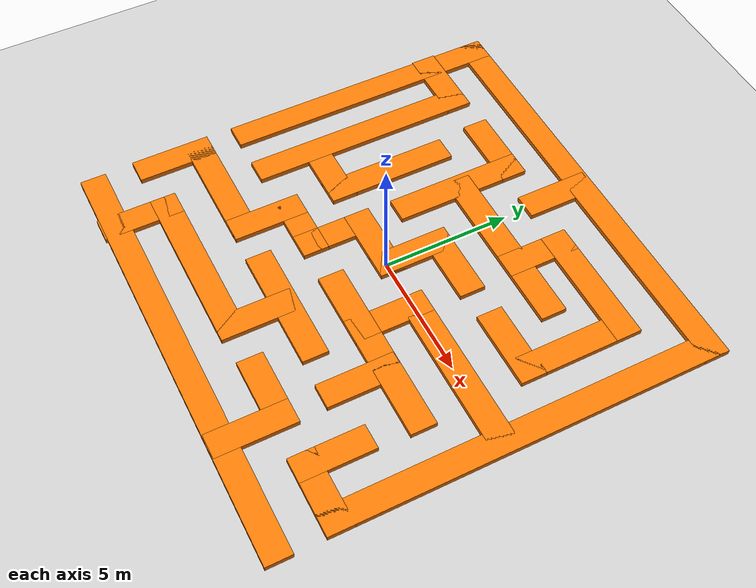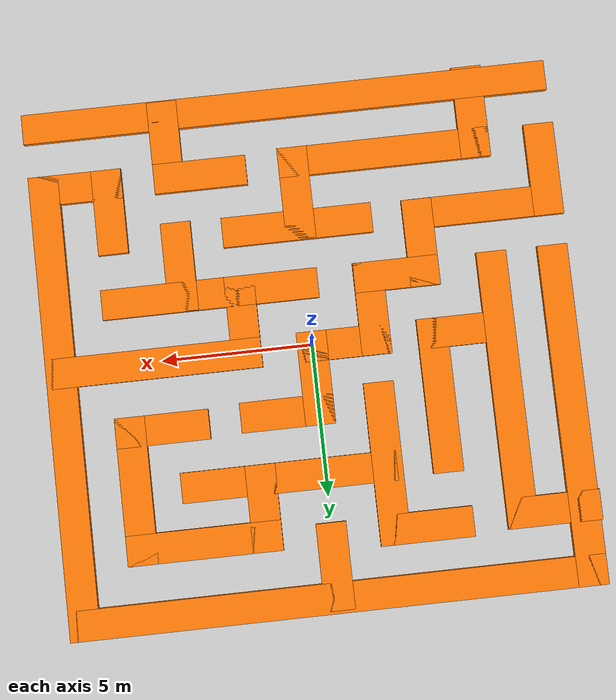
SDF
<sdf version="1.7">
 <world name="default">
  <light name="sun" type="directional">
   <pose>0 0 10 0 -0 0</pose>
   <diffuse>0.8 0.8 0.8 1</diffuse>
   <specular>0.2 0.2 0.2 1</specular>
   <attenuation>
    <range>1000</range>
    <constant>0.9</constant>
    <linear>0.01</linear>
    <quadratic>0.001</quadratic>
   </attenuation>
   <direction>-0.5 0.1 -0.9</direction>
   <spot><inner_angle>0</inner_angle><outer_angle>0</outer_angle><falloff>0</falloff></spot>
  </light>
  <model name="ground_plane">
   <static>1</static>
   <link name="link">
    <collision name="collision">
     <geometry><plane><normal>0 0 1</normal><size>100 100</size></plane></geometry>
     <surface><friction><ode><mu>100</mu><mu2>50</mu2></ode></friction></surface>
    </collision>
    <visual name="visual">
     <cast_shadows>0</cast_shadows>
     <geometry><plane><normal>0 0 1</normal><size>100 100</size></plane></geometry>
     <material>
      <script><uri>file://media/materials/scripts/gazebo.material</uri><name>Gazebo/Grey</name></script>
     </material>
    </visual>
   </link>
  </model>
  <gravity>0 0 -9.8</gravity>
  <magnetic_field>6e-06 2.3e-05 -4.2e-05</magnetic_field>
  <atmosphere type="adiabatic"/>
  <physics type="ode">
   <max_step_size>0.001</max_step_size>
   <real_time_factor>1</real_time_factor>
   <real_time_update_rate>1000</real_time_update_rate>
  </physics>
  <scene><ambient>0.4 0.4 0.4 1</ambient><background>0.7 0.7 0.7 1</background><shadows>1</shadows></scene>
  <audio><device>default</device></audio>
  <spherical_coordinates>
   <surface_model>EARTH_WGS84</surface_model>
   <latitude_deg>0</latitude_deg>
   <longitude_deg>0</longitude_deg>
   <elevation>0</elevation>
   <heading_deg>0</heading_deg>
  </spherical_coordinates>
  <model name="maze_1m_path">
   <pose>0.009148 0.015031 0 0 -0 0</pose>
   <link name="Wall_0">
    <collision name="Wall_0_Collision">
     <geometry><box><size>17.6001 1 0.2</size></box></geometry>
     <pose>0 0 0.1 0 -0 0</pose>
    </collision>
    <visual name="Wall_0_Visual">
     <pose>0 0 0.1 0 -0 0</pose>
     <geometry><box><size>17.6001 1 0.2</size></box></geometry>
     <material>
      <script><uri>file://media/materials/scripts/gazebo.material</uri><name>Gazebo/Grey</name></script>
      <ambient>0.996078 0.47451 0.0196078 1</ambient>
     </material>
     <meta><layer>0</layer></meta>
    </visual>
    <pose>0.010502 8.27796 0 0 -0 0</pose>
   </link>
   <link name="Wall_12">
    <collision name="Wall_12_Collision">
     <geometry><box><size>11.255 1 0.2</size></box></geometry>
     <pose>0 0 0.1 0 -0 0</pose>
    </collision>
    <visual name="Wall_12_Visual">
     <pose>0 0 0.1 0 -0 0</pose>
     <geometry><box><size>11.255 1 0.2</size></box></geometry>
     <material>
      <script><uri>file://media/materials/scripts/gazebo.material</uri><name>Gazebo/Grey</name></script>
      <ambient>0.996078 0.47451 0.0196078 1</ambient>
     </material>
     <meta><layer>0</layer></meta>
    </visual>
    <pose>-8.2895 3.15046 0 0 -0 -1.5708</pose>
   </link>
   <link name="Wall_16">
    <collision name="Wall_16_Collision">
     <geometry><box><size>3.10015 1 0.2</size></box></geometry>
     <pose>0 0 0.1 0 -0 0</pose>
    </collision>
    <visual name="Wall_16_Visual">
     <pose>0 0 0.1 0 -0 0</pose>
     <geometry><box><size>3.10015 1 0.2</size></box></geometry>
     <material>
      <script><uri>file://media/materials/scripts/gazebo.material</uri><name>Gazebo/Grey</name></script>
      <ambient>0.996078 0.47451 0.0196078 1</ambient>
     </material>
     <meta><layer>0</layer></meta>
    </visual>
    <pose>-8.3225 -5.04305 0 0 -0 -1.5708</pose>
   </link>
   <link name="Wall_18">
    <collision name="Wall_18_Collision">
     <geometry><box><size>5.1 1 0.2</size></box></geometry>
     <pose>0 0 0.1 0 -0 0</pose>
    </collision>
    <visual name="Wall_18_Visual">
     <pose>0 0 0.1 0 -0 0</pose>
     <geometry><box><size>5.1 1 0.2</size></box></geometry>
     <material>
      <script><uri>file://media/materials/scripts/gazebo.material</uri><name>Gazebo/Grey</name></script>
      <ambient>0.996078 0.47451 0.0196078 1</ambient>
     </material>
     <meta><layer>0</layer></meta>
    </visual>
    <pose>-6.2725 -3.99304 0 0 -0 0</pose>
   </link>
   <link name="Wall_2">
    <collision name="Wall_2_Collision">
     <geometry><box><size>15.35 1 0.2</size></box></geometry>
     <pose>0 0 0.1 0 -0 0</pose>
    </collision>
    <visual name="Wall_2_Visual">
     <pose>0 0 0.1 0 -0 0</pose>
     <geometry><box><size>15.35 1 0.2</size></box></geometry>
     <material>
      <script><uri>file://media/materials/scripts/gazebo.material</uri><name>Gazebo/Grey</name></script>
      <ambient>0.996078 0.47451 0.0196078 1</ambient>
     </material>
     <meta><layer>0</layer></meta>
    </visual>
    <pose>8.3105 1.10295 0 0 -0 -1.5708</pose>
   </link>
   <link name="Wall_23">
    <collision name="Wall_23_Collision">
     <geometry><box><size>3.10023 1 0.2</size></box></geometry>
     <pose>0 0 0.1 0 -0 0</pose>
    </collision>
    <visual name="Wall_23_Visual">
     <pose>0 0 0.1 0 -0 0</pose>
     <geometry><box><size>3.10023 1 0.2</size></box></geometry>
     <material>
      <script><uri>file://media/materials/scripts/gazebo.material</uri><name>Gazebo/Grey</name></script>
      <ambient>0.996078 0.47451 0.0196078 1</ambient>
     </material>
     <meta><layer>0</layer></meta>
    </visual>
    <pose>-7.2955 6.18295 0 0 -0 0</pose>
   </link>
   <link name="Wall_25">
    <collision name="Wall_25_Collision">
     <geometry><box><size>9.16 1 0.2</size></box></geometry>
     <pose>0 0 0.1 0 -0 0</pose>
    </collision>
    <visual name="Wall_25_Visual">
     <pose>0 0 0.1 0 -0 0</pose>
     <geometry><box><size>9.16 1 0.2</size></box></geometry>
     <material>
      <script><uri>file://media/materials/scripts/gazebo.material</uri><name>Gazebo/Grey</name></script>
      <ambient>0.996078 0.47451 0.0196078 1</ambient>
     </material>
     <meta><layer>0</layer></meta>
    </visual>
    <pose>-6.2455 2.10296 0 0 -0 -1.5708</pose>
   </link>
   <link name="Wall_27">
    <collision name="Wall_27_Collision">
     <geometry><box><size>3.10034 1 0.2</size></box></geometry>
     <pose>0 0 0.1 0 -0 0</pose>
    </collision>
    <visual name="Wall_27_Visual">
     <pose>0 0 0.1 0 -0 0</pose>
     <geometry><box><size>3.10034 1 0.2</size></box></geometry>
     <material>
      <script><uri>file://media/materials/scripts/gazebo.material</uri><name>Gazebo/Grey</name></script>
      <ambient>0.996078 0.47451 0.0196078 1</ambient>
     </material>
     <meta><layer>0</layer></meta>
    </visual>
    <pose>-5.0665 0.021955 0 0 -0 0</pose>
   </link>
   <link name="Wall_29">
    <collision name="Wall_29_Collision">
     <geometry><box><size>5.1 1 0.2</size></box></geometry>
     <pose>0 0 0.1 0 -0 0</pose>
    </collision>
    <visual name="Wall_29_Visual">
     <pose>0 0 0.1 0 -0 0</pose>
     <geometry><box><size>5.1 1 0.2</size></box></geometry>
     <material>
      <script><uri>file://media/materials/scripts/gazebo.material</uri><name>Gazebo/Grey</name></script>
      <ambient>0.996078 0.47451 0.0196078 1</ambient>
     </material>
     <meta><layer>0</layer></meta>
    </visual>
    <pose>-4.0165 2.07195 0 0 -0 1.5708</pose>
   </link>
   <link name="Wall_31">
    <collision name="Wall_31_Collision">
     <geometry><box><size>3.10035 1 0.2</size></box></geometry>
     <pose>0 0 0.1 0 -0 0</pose>
    </collision>
    <visual name="Wall_31_Visual">
     <pose>0 0 0.1 0 -0 0</pose>
     <geometry><box><size>3.10035 1 0.2</size></box></geometry>
     <material>
      <script><uri>file://media/materials/scripts/gazebo.material</uri><name>Gazebo/Grey</name></script>
      <ambient>0.996078 0.47451 0.0196078 1</ambient>
     </material>
     <meta><layer>0</layer></meta>
    </visual>
    <pose>-3.0965 6.28395 0 0 -0 0</pose>
   </link>
   <link name="Wall_33">
    <collision name="Wall_33_Collision">
     <geometry><box><size>5.35 1 0.2</size></box></geometry>
     <pose>0 0 0.1 0 -0 0</pose>
    </collision>
    <visual name="Wall_33_Visual">
     <pose>0 0 0.1 0 -0 0</pose>
     <geometry><box><size>5.35 1 0.2</size></box></geometry>
     <material>
      <script><uri>file://media/materials/scripts/gazebo.material</uri><name>Gazebo/Grey</name></script>
      <ambient>0.996078 0.47451 0.0196078 1</ambient>
     </material>
     <meta><layer>0</layer></meta>
    </visual>
    <pose>-2.0465 4.10895 0 0 -0 -1.5708</pose>
   </link>
   <link name="Wall_35">
    <collision name="Wall_35_Collision">
     <geometry><box><size>7.09997 1 0.2</size></box></geometry>
     <pose>0 0 0.1 0 -0 0</pose>
    </collision>
    <visual name="Wall_35_Visual">
     <pose>0 0 0.1 0 -0 0</pose>
     <geometry><box><size>7.09997 1 0.2</size></box></geometry>
     <material>
      <script><uri>file://media/materials/scripts/gazebo.material</uri><name>Gazebo/Grey</name></script>
      <ambient>0.996078 0.47451 0.0196078 1</ambient>
     </material>
     <meta><layer>0</layer></meta>
    </visual>
    <pose>1.1905 4.20895 0 0 -0 0</pose>
   </link>
   <link name="Wall_37">
    <collision name="Wall_37_Collision">
     <geometry><box><size>2.85006 1 0.2</size></box></geometry>
     <pose>0 0 0.1 0 -0 0</pose>
    </collision>
    <visual name="Wall_37_Visual">
     <pose>0 0 0.1 0 -0 0</pose>
     <geometry><box><size>2.85006 1 0.2</size></box></geometry>
     <material>
      <script><uri>file://media/materials/scripts/gazebo.material</uri><name>Gazebo/Grey</name></script>
      <ambient>0.996078 0.47451 0.0196078 1</ambient>
     </material>
     <meta><layer>0</layer></meta>
    </visual>
    <pose>0.004502 7.25896 0 0 -0 -1.5708</pose>
   </link>
   <link name="Wall_39">
    <collision name="Wall_39_Collision">
     <geometry><box><size>2.84974 1 0.2</size></box></geometry>
     <pose>0 0 0.1 0 -0 0</pose>
    </collision>
    <visual name="Wall_39_Visual">
     <pose>0 0 0.1 0 -0 0</pose>
     <geometry><box><size>2.84974 1 0.2</size></box></geometry>
     <material>
      <script><uri>file://media/materials/scripts/gazebo.material</uri><name>Gazebo/Grey</name></script>
      <ambient>0.996078 0.47451 0.0196078 1</ambient>
     </material>
     <meta><layer>0</layer></meta>
    </visual>
    <pose>2.1155 5.13396 0 0 -0 1.5708</pose>
   </link>
   <link name="Wall_4">
    <collision name="Wall_4_Collision">
     <geometry><box><size>3.1 1 0.2</size></box></geometry>
     <pose>0 0 0.1 0 -0 0</pose>
    </collision>
    <visual name="Wall_4_Visual">
     <pose>0 0 0.1 0 -0 0</pose>
     <geometry><box><size>3.1 1 0.2</size></box></geometry>
     <material>
      <script><uri>file://media/materials/scripts/gazebo.material</uri><name>Gazebo/Grey</name></script>
      <ambient>0.996078 0.47451 0.0196078 1</ambient>
     </material>
     <meta><layer>0</layer></meta>
    </visual>
    <pose>7.2605 -6.07205 0 0 -0 3.14159</pose>
   </link>
   <link name="Wall_41">
    <collision name="Wall_41_Collision">
     <geometry><box><size>5.1 1 0.2</size></box></geometry>
     <pose>0 0 0.1 0 -0 0</pose>
    </collision>
    <visual name="Wall_41_Visual">
     <pose>0 0 0.1 0 -0 0</pose>
     <geometry><box><size>5.1 1 0.2</size></box></geometry>
     <material>
      <script><uri>file://media/materials/scripts/gazebo.material</uri><name>Gazebo/Grey</name></script>
      <ambient>0.996078 0.47451 0.0196078 1</ambient>
     </material>
     <meta><layer>0</layer></meta>
    </visual>
    <pose>4.1655 6.05896 0 0 -0 0</pose>
   </link>
   <link name="Wall_43">
    <collision name="Wall_43_Collision">
     <geometry><box><size>4.85 1 0.2</size></box></geometry>
     <pose>0 0 0.1 0 -0 0</pose>
    </collision>
    <visual name="Wall_43_Visual">
     <pose>0 0 0.1 0 -0 0</pose>
     <geometry><box><size>4.85 1 0.2</size></box></geometry>
     <material>
      <script><uri>file://media/materials/scripts/gazebo.material</uri><name>Gazebo/Grey</name></script>
      <ambient>0.996078 0.47451 0.0196078 1</ambient>
     </material>
     <meta><layer>0</layer></meta>
    </visual>
    <pose>6.2155 4.13396 0 0 -0 -1.5708</pose>
   </link>
   <link name="Wall_45">
    <collision name="Wall_45_Collision">
     <geometry><box><size>3.1 1 0.2</size></box></geometry>
     <pose>0 0 0.1 0 -0 0</pose>
    </collision>
    <visual name="Wall_45_Visual">
     <pose>0 0 0.1 0 -0 0</pose>
     <geometry><box><size>3.1 1 0.2</size></box></geometry>
     <material>
      <script><uri>file://media/materials/scripts/gazebo.material</uri><name>Gazebo/Grey</name></script>
      <ambient>0.996078 0.47451 0.0196078 1</ambient>
     </material>
     <meta><layer>0</layer></meta>
    </visual>
    <pose>5.1655 2.20896 0 0 -0 3.14159</pose>
   </link>
   <link name="Wall_47">
    <collision name="Wall_47_Collision">
     <geometry><box><size>3.10001 1 0.2</size></box></geometry>
     <pose>0 0 0.1 0 -0 0</pose>
    </collision>
    <visual name="Wall_47_Visual">
     <pose>0 0 0.1 0 -0 0</pose>
     <geometry><box><size>3.10001 1 0.2</size></box></geometry>
     <material>
      <script><uri>file://media/materials/scripts/gazebo.material</uri><name>Gazebo/Grey</name></script>
      <ambient>0.996078 0.47451 0.0196078 1</ambient>
     </material>
     <meta><layer>0</layer></meta>
    </visual>
    <pose>1.0305 2.13295 0 0 -0 3.14159</pose>
   </link>
   <link name="Wall_49">
    <collision name="Wall_49_Collision">
     <geometry><box><size>3.1 1 0.2</size></box></geometry>
     <pose>0 0 0.1 0 -0 0</pose>
    </collision>
    <visual name="Wall_49_Visual">
     <pose>0 0 0.1 0 -0 0</pose>
     <geometry><box><size>3.1 1 0.2</size></box></geometry>
     <material>
      <script><uri>file://media/materials/scripts/gazebo.material</uri><name>Gazebo/Grey</name></script>
      <ambient>0.996078 0.47451 0.0196078 1</ambient>
     </material>
     <meta><layer>0</layer></meta>
    </visual>
    <pose>-0.019498 1.08295 0 0 -0 -1.5708</pose>
   </link>
   <link name="Wall_51">
    <collision name="Wall_51_Collision">
     <geometry><box><size>3.1 1 0.2</size></box></geometry>
     <pose>0 0 0.1 0 -0 0</pose>
    </collision>
    <visual name="Wall_51_Visual">
     <pose>0 0 0.1 0 -0 0</pose>
     <geometry><box><size>3.1 1 0.2</size></box></geometry>
     <material>
      <script><uri>file://media/materials/scripts/gazebo.material</uri><name>Gazebo/Grey</name></script>
      <ambient>0.996078 0.47451 0.0196078 1</ambient>
     </material>
     <meta><layer>0</layer></meta>
    </visual>
    <pose>-1.0695 0.032955 0 0 -0 3.14159</pose>
   </link>
   <link name="Wall_53">
    <collision name="Wall_53_Collision">
     <geometry><box><size>3.1 1 0.2</size></box></geometry>
     <pose>0 0 0.1 0 -0 0</pose>
    </collision>
    <visual name="Wall_53_Visual">
     <pose>0 0 0.1 0 -0 0</pose>
     <geometry><box><size>3.1 1 0.2</size></box></geometry>
     <material>
      <script><uri>file://media/materials/scripts/gazebo.material</uri><name>Gazebo/Grey</name></script>
      <ambient>0.996078 0.47451 0.0196078 1</ambient>
     </material>
     <meta><layer>0</layer></meta>
    </visual>
    <pose>-2.1195 -1.01704 0 0 -0 -1.5708</pose>
   </link>
   <link name="Wall_55">
    <collision name="Wall_55_Collision">
     <geometry><box><size>2.85 1 0.2</size></box></geometry>
     <pose>0 0 0.1 0 -0 0</pose>
    </collision>
    <visual name="Wall_55_Visual">
     <pose>0 0 0.1 0 -0 0</pose>
     <geometry><box><size>2.85 1 0.2</size></box></geometry>
     <material>
      <script><uri>file://media/materials/scripts/gazebo.material</uri><name>Gazebo/Grey</name></script>
      <ambient>0.996078 0.47451 0.0196078 1</ambient>
     </material>
     <meta><layer>0</layer></meta>
    </visual>
    <pose>-3.0445 -2.06704 0 0 -0 3.14159</pose>
   </link>
   <link name="Wall_57">
    <collision name="Wall_57_Collision">
     <geometry><box><size>2.921 1 0.2</size></box></geometry>
     <pose>0 0 0.1 0 -0 0</pose>
    </collision>
    <visual name="Wall_57_Visual">
     <pose>0 0 0.1 0 -0 0</pose>
     <geometry><box><size>2.921 1 0.2</size></box></geometry>
     <material>
      <script><uri>file://media/materials/scripts/gazebo.material</uri><name>Gazebo/Grey</name></script>
      <ambient>0.996078 0.47451 0.0196078 1</ambient>
     </material>
     <meta><layer>0</layer></meta>
    </visual>
    <pose>-3.9695 -3.02754 0 0 -0 -1.5708</pose>
   </link>
   <link name="Wall_59">
    <collision name="Wall_59_Collision">
     <geometry><box><size>7.09965 1 0.2</size></box></geometry>
     <pose>0 0 0.1 0 -0 0</pose>
    </collision>
    <visual name="Wall_59_Visual">
     <pose>0 0 0.1 0 -0 0</pose>
     <geometry><box><size>7.09965 1 0.2</size></box></geometry>
     <material>
      <script><uri>file://media/materials/scripts/gazebo.material</uri><name>Gazebo/Grey</name></script>
      <ambient>0.996078 0.47451 0.0196078 1</ambient>
     </material>
     <meta><layer>0</layer></meta>
    </visual>
    <pose>5.2165 0.037955 0 0 -0 3.14159</pose>
   </link>
   <link name="Wall_6">
    <collision name="Wall_6_Collision">
     <geometry><box><size>2.85 1 0.2</size></box></geometry>
     <pose>0 0 0.1 0 -0 0</pose>
    </collision>
    <visual name="Wall_6_Visual">
     <pose>0 0 0.1 0 -0 0</pose>
     <geometry><box><size>2.85 1 0.2</size></box></geometry>
     <material>
      <script><uri>file://media/materials/scripts/gazebo.material</uri><name>Gazebo/Grey</name></script>
      <ambient>0.996078 0.47451 0.0196078 1</ambient>
     </material>
     <meta><layer>0</layer></meta>
    </visual>
    <pose>6.2105 -5.14705 0 0 -0 1.5708</pose>
   </link>
   <link name="Wall_60">
    <collision name="Wall_60_Collision">
     <geometry><box><size>3.09991 1 0.2</size></box></geometry>
     <pose>0 0 0.1 0 -0 0</pose>
    </collision>
    <visual name="Wall_60_Visual">
     <pose>0 0 0.1 0 -0 0</pose>
     <geometry><box><size>3.09991 1 0.2</size></box></geometry>
     <material>
      <script><uri>file://media/materials/scripts/gazebo.material</uri><name>Gazebo/Grey</name></script>
      <ambient>0.996078 0.47451 0.0196078 1</ambient>
     </material>
     <meta><layer>0</layer></meta>
    </visual>
    <pose>2.1665 -1.01205 0 0 -0 -1.5708</pose>
   </link>
   <link name="Wall_61">
    <collision name="Wall_61_Collision">
     <geometry><box><size>5.10035 1 0.2</size></box></geometry>
     <pose>0 0 0.1 0 -0 0</pose>
    </collision>
    <visual name="Wall_61_Visual">
     <pose>0 0 0.1 0 -0 0</pose>
     <geometry><box><size>5.10035 1 0.2</size></box></geometry>
     <material>
      <script><uri>file://media/materials/scripts/gazebo.material</uri><name>Gazebo/Grey</name></script>
      <ambient>0.996078 0.47451 0.0196078 1</ambient>
     </material>
     <meta><layer>0</layer></meta>
    </visual>
    <pose>4.2165 -2.06204 0 0 -0 0</pose>
   </link>
   <link name="Wall_63">
    <collision name="Wall_63_Collision">
     <geometry><box><size>2.986 1 0.2</size></box></geometry>
     <pose>0 0 0.1 0 -0 0</pose>
    </collision>
    <visual name="Wall_63_Visual">
     <pose>0 0 0.1 0 -0 0</pose>
     <geometry><box><size>2.986 1 0.2</size></box></geometry>
     <material>
      <script><uri>file://media/materials/scripts/gazebo.material</uri><name>Gazebo/Grey</name></script>
      <ambient>0.996078 0.47451 0.0196078 1</ambient>
     </material>
     <meta><layer>0</layer></meta>
    </visual>
    <pose>4.0805 -3.07404 0 0 -0 -1.5708</pose>
   </link>
   <link name="Wall_65">
    <collision name="Wall_65_Collision">
     <geometry><box><size>5 1 0.2</size></box></geometry>
     <pose>0 0 0.1 0 -0 0</pose>
    </collision>
    <visual name="Wall_65_Visual">
     <pose>0 0 0.1 0 -0 0</pose>
     <geometry><box><size>5 1 0.2</size></box></geometry>
     <material>
      <script><uri>file://media/materials/scripts/gazebo.material</uri><name>Gazebo/Grey</name></script>
      <ambient>0.996078 0.47451 0.0196078 1</ambient>
     </material>
     <meta><layer>0</layer></meta>
    </visual>
    <pose>0.054502 -4.04305 0 0 -0 3.14159</pose>
   </link>
   <link name="Wall_67">
    <collision name="Wall_67_Collision">
     <geometry><box><size>3.09982 1 0.2</size></box></geometry>
     <pose>0 0 0.1 0 -0 0</pose>
    </collision>
    <visual name="Wall_67_Visual">
     <pose>0 0 0.1 0 -0 0</pose>
     <geometry><box><size>3.09982 1 0.2</size></box></geometry>
     <material>
      <script><uri>file://media/materials/scripts/gazebo.material</uri><name>Gazebo/Grey</name></script>
      <ambient>0.996078 0.47451 0.0196078 1</ambient>
     </material>
     <meta><layer>0</layer></meta>
    </visual>
    <pose>-0.035498 -5.12805 0 0 -0 -1.5708</pose>
   </link>
   <link name="Wall_68">
    <collision name="Wall_68_Collision">
     <geometry><box><size>7.09983 1 0.2</size></box></geometry>
     <pose>0 0 0.1 0 -0 0</pose>
    </collision>
    <visual name="Wall_68_Visual">
     <pose>0 0 0.1 0 -0 0</pose>
     <geometry><box><size>7.09983 1 0.2</size></box></geometry>
     <material>
      <script><uri>file://media/materials/scripts/gazebo.material</uri><name>Gazebo/Grey</name></script>
      <ambient>0.996078 0.47451 0.0196078 1</ambient>
     </material>
     <meta><layer>0</layer></meta>
    </visual>
    <pose>-3.0855 -6.17805 0 0 -0 3.14159</pose>
   </link>
   <link name="Wall_69">
    <collision name="Wall_69_Collision">
     <geometry><box><size>3.09982 1 0.2</size></box></geometry>
     <pose>0 0 0.1 0 -0 0</pose>
    </collision>
    <visual name="Wall_69_Visual">
     <pose>0 0 0.1 0 -0 0</pose>
     <geometry><box><size>3.09982 1 0.2</size></box></geometry>
     <material>
      <script><uri>file://media/materials/scripts/gazebo.material</uri><name>Gazebo/Grey</name></script>
      <ambient>0.996078 0.47451 0.0196078 1</ambient>
     </material>
     <meta><layer>0</layer></meta>
    </visual>
    <pose>-6.1355 -7.22804 0 0 -0 -1.5708</pose>
   </link>
   <link name="Wall_71">
    <collision name="Wall_71_Collision">
     <geometry><box><size>3.09971 1 0.2</size></box></geometry>
     <pose>0 0 0.1 0 -0 0</pose>
    </collision>
    <visual name="Wall_71_Visual">
     <pose>0 0 0.1 0 -0 0</pose>
     <geometry><box><size>3.09971 1 0.2</size></box></geometry>
     <material>
      <script><uri>file://media/materials/scripts/gazebo.material</uri><name>Gazebo/Grey</name></script>
      <ambient>0.996078 0.47451 0.0196078 1</ambient>
     </material>
     <meta><layer>0</layer></meta>
    </visual>
    <pose>3.0905 -6.08305 0 0 -0 0</pose>
   </link>
   <link name="Wall_72">
    <collision name="Wall_72_Collision">
     <geometry><box><size>3.10001 1 0.2</size></box></geometry>
     <pose>0 0 0.1 0 -0 0</pose>
    </collision>
    <visual name="Wall_72_Visual">
     <pose>0 0 0.1 0 -0 0</pose>
     <geometry><box><size>3.10001 1 0.2</size></box></geometry>
     <material>
      <script><uri>file://media/materials/scripts/gazebo.material</uri><name>Gazebo/Grey</name></script>
      <ambient>0.996078 0.47451 0.0196078 1</ambient>
     </material>
     <meta><layer>0</layer></meta>
    </visual>
    <pose>4.1405 -7.13305 0 0 -0 -1.5708</pose>
   </link>
   <link name="Wall_74">
    <collision name="Wall_74_Collision">
     <geometry><box><size>3.09965 1 0.2</size></box></geometry>
     <pose>0 0 0.1 0 -0 0</pose>
    </collision>
    <visual name="Wall_74_Visual">
     <pose>0 0 0.1 0 -0 0</pose>
     <geometry><box><size>3.09965 1 0.2</size></box></geometry>
     <material>
      <script><uri>file://media/materials/scripts/gazebo.material</uri><name>Gazebo/Grey</name></script>
      <ambient>0.996078 0.47451 0.0196078 1</ambient>
     </material>
     <meta><layer>0</layer></meta>
    </visual>
    <pose>1.1165 -2.06204 0 0 -0 3.14159</pose>
   </link>
   <link name="Wall_8">
    <collision name="Wall_8_Collision">
     <geometry><box><size>17.6002 1 0.2</size></box></geometry>
     <pose>0 0 0.1 0 -0 0</pose>
    </collision>
    <visual name="Wall_8_Visual">
     <pose>0 0 0.1 0 -0 0</pose>
     <geometry><box><size>17.6002 1 0.2</size></box></geometry>
     <material>
      <script><uri>file://media/materials/scripts/gazebo.material</uri><name>Gazebo/Grey</name></script>
      <ambient>0.996078 0.47451 0.0196078 1</ambient>
     </material>
     <meta><layer>0</layer></meta>
    </visual>
    <pose>0.045502 -8.21104 0 0 -0 0</pose>
   </link>
   <static>1</static>
  </model>
 </world>
</sdf>
